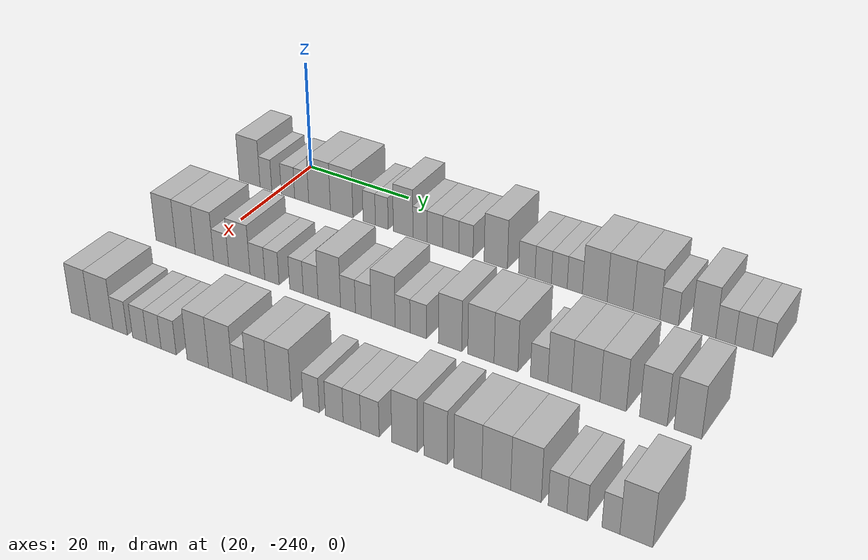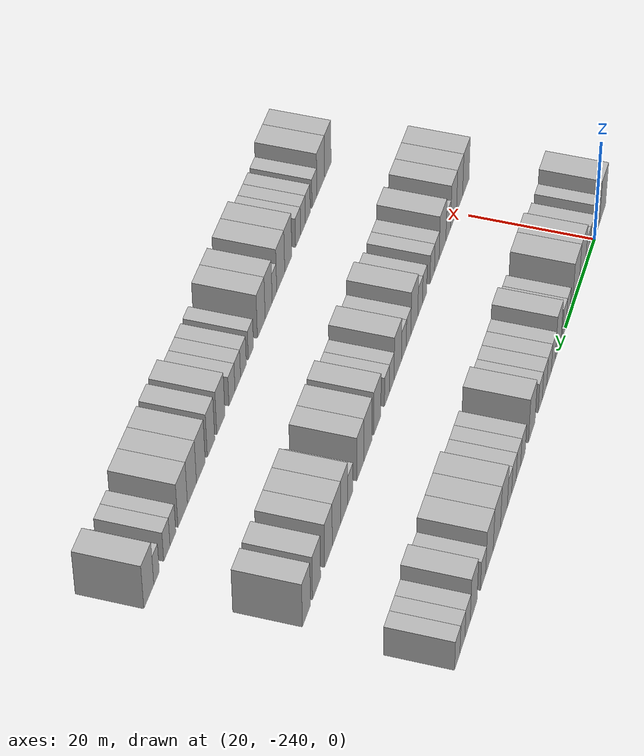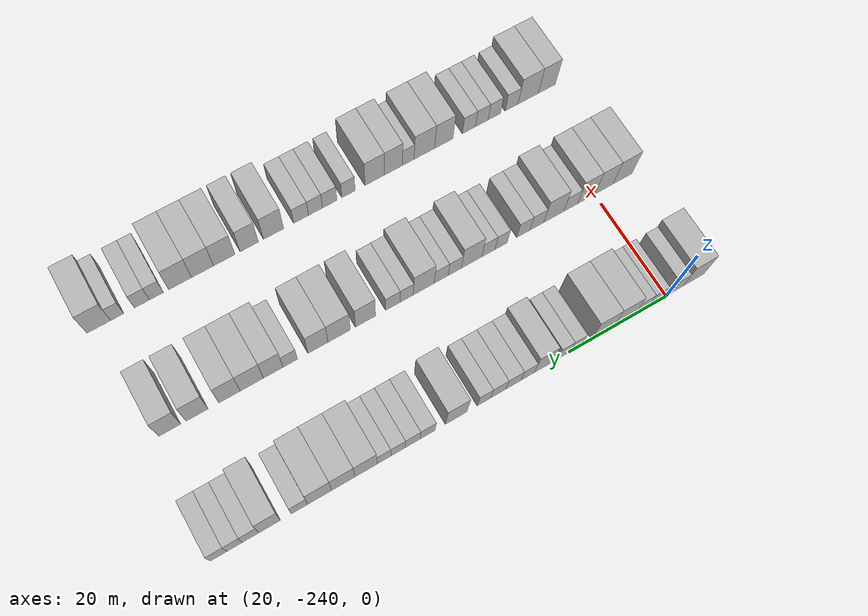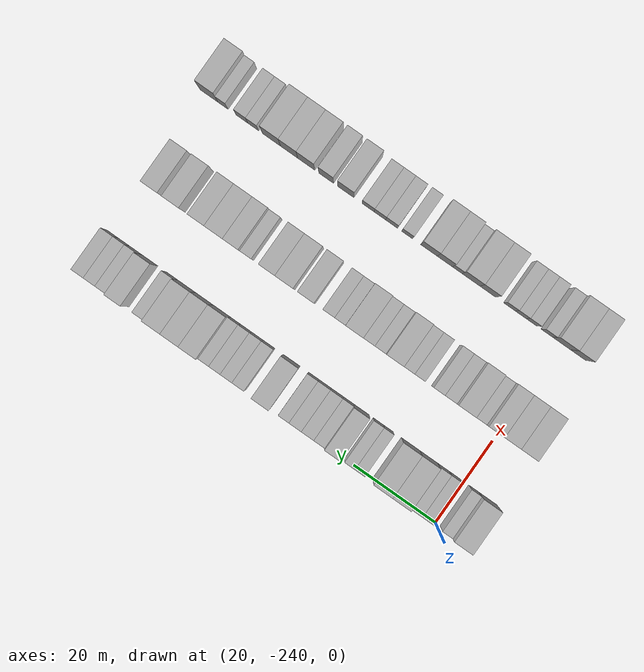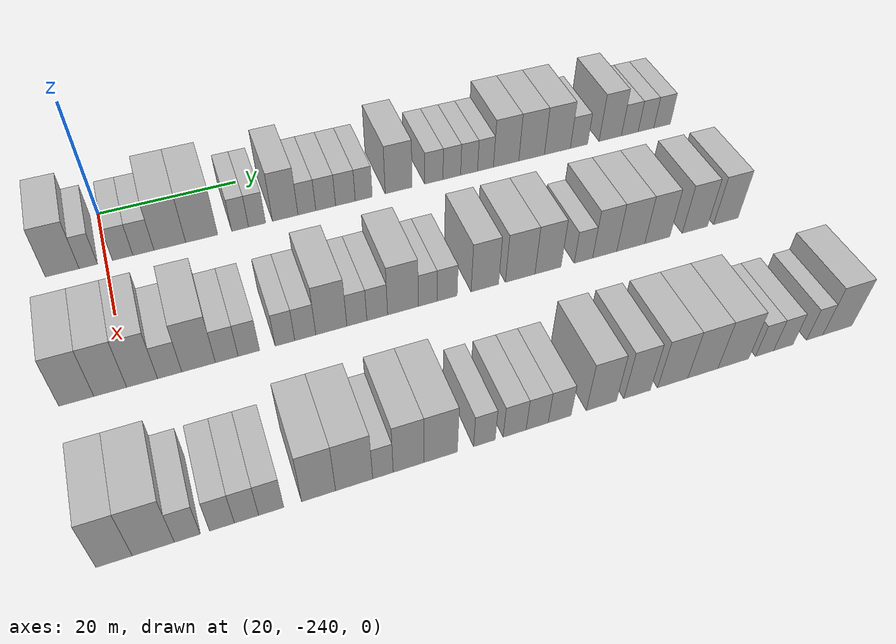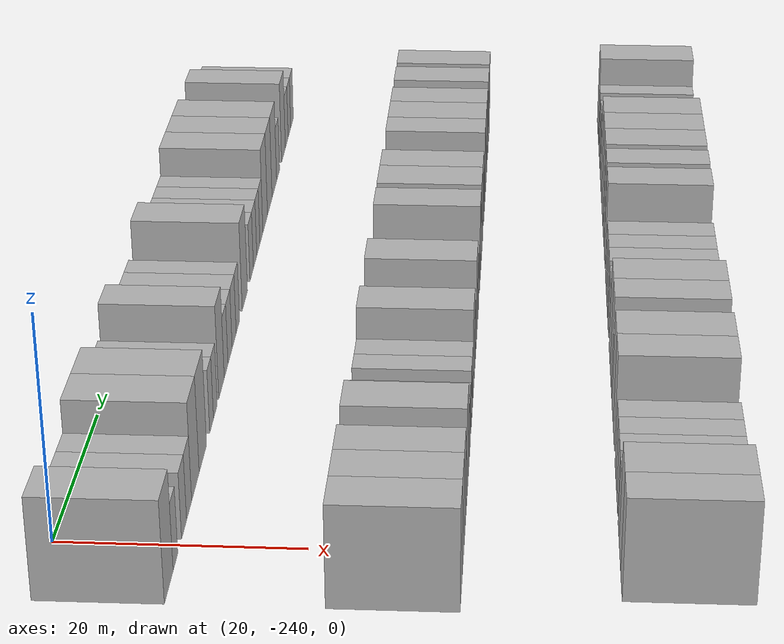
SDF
<sdf version="1.6">
 <world name="default">
  <model name="building_1">
   <static>1</static>
   <pose>25.0000 -245.7820 0 0.000000 0.000000 0.000000</pose>
   <link name="link">
    <pose>0 0 4.50 0 0 0</pose>
    <collision name="collision"><geometry><box><size>10.0000 4.4360 9.0000</size></box></geometry></collision>
    <visual name="visual">
     <cast_shadows>0</cast_shadows>
     <geometry><box><size>10.0000 4.4360 9.0000</size></box></geometry>
     <material>
      <script>
       <uri>model://HANNAS_wall/materials/scripts</uri>
       <uri>model://HANNAS_wall/materials/textures</uri>
       <name>vrc/HANNAS_wall</name>
      </script>
     </material>
    </visual>
   </link>
  </model>
  <model name="building_2">
   <static>1</static>
   <pose>25.0000 -242.3404 0 0.000000 0.000000 0.000000</pose>
   <link name="link">
    <pose>0 0 3.00 0 0 0</pose>
    <collision name="collision"><geometry><box><size>10.0000 2.4471 6.0000</size></box></geometry></collision>
    <visual name="visual">
     <cast_shadows>0</cast_shadows>
     <geometry><box><size>10.0000 2.4471 6.0000</size></box></geometry>
     <material>
      <script>
       <uri>model://HANNAS_wall/materials/scripts</uri>
       <uri>model://HANNAS_wall/materials/textures</uri>
       <name>vrc/HANNAS_wall</name>
      </script>
     </material>
    </visual>
   </link>
  </model>
  <model name="building_3">
   <static>1</static>
   <pose>25.0000 -237.7306 0 0.000000 0.000000 0.000000</pose>
   <link name="link">
    <pose>0 0 3.00 0 0 0</pose>
    <collision name="collision"><geometry><box><size>10.0000 2.7723 6.0000</size></box></geometry></collision>
    <visual name="visual">
     <cast_shadows>0</cast_shadows>
     <geometry><box><size>10.0000 2.7723 6.0000</size></box></geometry>
     <material>
      <script>
       <uri>model://HANNAS_wall/materials/scripts</uri>
       <uri>model://HANNAS_wall/materials/textures</uri>
       <name>vrc/HANNAS_wall</name>
      </script>
     </material>
    </visual>
   </link>
  </model>
  <model name="building_4">
   <static>1</static>
   <pose>25.0000 -234.9092 0 0.000000 0.000000 0.000000</pose>
   <link name="link">
    <pose>0 0 3.00 0 0 0</pose>
    <collision name="collision"><geometry><box><size>10.0000 2.8706 6.0000</size></box></geometry></collision>
    <visual name="visual">
     <cast_shadows>0</cast_shadows>
     <geometry><box><size>10.0000 2.8706 6.0000</size></box></geometry>
     <material>
      <script>
       <uri>model://HANNAS_wall/materials/scripts</uri>
       <uri>model://HANNAS_wall/materials/textures</uri>
       <name>vrc/HANNAS_wall</name>
      </script>
     </material>
    </visual>
   </link>
  </model>
  <model name="building_5">
   <static>1</static>
   <pose>25.0000 -231.2819 0 0.000000 0.000000 0.000000</pose>
   <link name="link">
    <pose>0 0 4.50 0 0 0</pose>
    <collision name="collision"><geometry><box><size>10.0000 4.3839 9.0000</size></box></geometry></collision>
    <visual name="visual">
     <cast_shadows>0</cast_shadows>
     <geometry><box><size>10.0000 4.3839 9.0000</size></box></geometry>
     <material>
      <script>
       <uri>model://HANNAS_wall/materials/scripts</uri>
       <uri>model://HANNAS_wall/materials/textures</uri>
       <name>vrc/HANNAS_wall</name>
      </script>
     </material>
    </visual>
   </link>
  </model>
  <model name="building_6">
   <static>1</static>
   <pose>25.0000 -226.8421 0 0.000000 0.000000 0.000000</pose>
   <link name="link">
    <pose>0 0 4.50 0 0 0</pose>
    <collision name="collision"><geometry><box><size>10.0000 4.4957 9.0000</size></box></geometry></collision>
    <visual name="visual">
     <cast_shadows>0</cast_shadows>
     <geometry><box><size>10.0000 4.4957 9.0000</size></box></geometry>
     <material>
      <script>
       <uri>model://HANNAS_wall/materials/scripts</uri>
       <uri>model://HANNAS_wall/materials/textures</uri>
       <name>vrc/HANNAS_wall</name>
      </script>
     </material>
    </visual>
   </link>
  </model>
  <model name="building_7">
   <static>1</static>
   <pose>25.0000 -221.3880 0 0.000000 0.000000 0.000000</pose>
   <link name="link">
    <pose>0 0 3.00 0 0 0</pose>
    <collision name="collision"><geometry><box><size>10.0000 2.4125 6.0000</size></box></geometry></collision>
    <visual name="visual">
     <cast_shadows>0</cast_shadows>
     <geometry><box><size>10.0000 2.4125 6.0000</size></box></geometry>
     <material>
      <script>
       <uri>model://HANNAS_wall/materials/scripts</uri>
       <uri>model://HANNAS_wall/materials/textures</uri>
       <name>vrc/HANNAS_wall</name>
      </script>
     </material>
    </visual>
   </link>
  </model>
  <model name="building_8">
   <static>1</static>
   <pose>25.0000 -218.9477 0 0.000000 0.000000 0.000000</pose>
   <link name="link">
    <pose>0 0 3.00 0 0 0</pose>
    <collision name="collision"><geometry><box><size>10.0000 2.4682 6.0000</size></box></geometry></collision>
    <visual name="visual">
     <cast_shadows>0</cast_shadows>
     <geometry><box><size>10.0000 2.4682 6.0000</size></box></geometry>
     <material>
      <script>
       <uri>model://HANNAS_wall/materials/scripts</uri>
       <uri>model://HANNAS_wall/materials/textures</uri>
       <name>vrc/HANNAS_wall</name>
      </script>
     </material>
    </visual>
   </link>
  </model>
  <model name="building_9">
   <static>1</static>
   <pose>25.0000 -214.8393 0 0.000000 0.000000 0.000000</pose>
   <link name="link">
    <pose>0 0 4.50 0 0 0</pose>
    <collision name="collision"><geometry><box><size>10.0000 3.7484 9.0000</size></box></geometry></collision>
    <visual name="visual">
     <cast_shadows>0</cast_shadows>
     <geometry><box><size>10.0000 3.7484 9.0000</size></box></geometry>
     <material>
      <script>
       <uri>model://HANNAS_wall/materials/scripts</uri>
       <uri>model://HANNAS_wall/materials/textures</uri>
       <name>vrc/HANNAS_wall</name>
      </script>
     </material>
    </visual>
   </link>
  </model>
  <model name="building_10">
   <static>1</static>
   <pose>25.0000 -211.6460 0 0.000000 0.000000 0.000000</pose>
   <link name="link">
    <pose>0 0 3.00 0 0 0</pose>
    <collision name="collision"><geometry><box><size>10.0000 2.6384 6.0000</size></box></geometry></collision>
    <visual name="visual">
     <cast_shadows>0</cast_shadows>
     <geometry><box><size>10.0000 2.6384 6.0000</size></box></geometry>
     <material>
      <script>
       <uri>model://HANNAS_wall/materials/scripts</uri>
       <uri>model://HANNAS_wall/materials/textures</uri>
       <name>vrc/HANNAS_wall</name>
      </script>
     </material>
    </visual>
   </link>
  </model>
  <model name="building_11">
   <static>1</static>
   <pose>25.0000 -208.8383 0 0.000000 0.000000 0.000000</pose>
   <link name="link">
    <pose>0 0 3.00 0 0 0</pose>
    <collision name="collision"><geometry><box><size>10.0000 2.9770 6.0000</size></box></geometry></collision>
    <visual name="visual">
     <cast_shadows>0</cast_shadows>
     <geometry><box><size>10.0000 2.9770 6.0000</size></box></geometry>
     <material>
      <script>
       <uri>model://HANNAS_wall/materials/scripts</uri>
       <uri>model://HANNAS_wall/materials/textures</uri>
       <name>vrc/HANNAS_wall</name>
      </script>
     </material>
    </visual>
   </link>
  </model>
  <model name="building_12">
   <static>1</static>
   <pose>25.0000 -205.8643 0 0.000000 0.000000 0.000000</pose>
   <link name="link">
    <pose>0 0 3.00 0 0 0</pose>
    <collision name="collision"><geometry><box><size>10.0000 2.9710 6.0000</size></box></geometry></collision>
    <visual name="visual">
     <cast_shadows>0</cast_shadows>
     <geometry><box><size>10.0000 2.9710 6.0000</size></box></geometry>
     <material>
      <script>
       <uri>model://HANNAS_wall/materials/scripts</uri>
       <uri>model://HANNAS_wall/materials/textures</uri>
       <name>vrc/HANNAS_wall</name>
      </script>
     </material>
    </visual>
   </link>
  </model>
  <model name="building_13">
   <static>1</static>
   <pose>25.0000 -203.0817 0 0.000000 0.000000 0.000000</pose>
   <link name="link">
    <pose>0 0 3.00 0 0 0</pose>
    <collision name="collision"><geometry><box><size>10.0000 2.5942 6.0000</size></box></geometry></collision>
    <visual name="visual">
     <cast_shadows>0</cast_shadows>
     <geometry><box><size>10.0000 2.5942 6.0000</size></box></geometry>
     <material>
      <script>
       <uri>model://HANNAS_wall/materials/scripts</uri>
       <uri>model://HANNAS_wall/materials/textures</uri>
       <name>vrc/HANNAS_wall</name>
      </script>
     </material>
    </visual>
   </link>
  </model>
  <model name="building_14">
   <static>1</static>
   <pose>25.0000 -197.6936 0 0.000000 0.000000 0.000000</pose>
   <link name="link">
    <pose>0 0 4.50 0 0 0</pose>
    <collision name="collision"><geometry><box><size>10.0000 4.1819 9.0000</size></box></geometry></collision>
    <visual name="visual">
     <cast_shadows>0</cast_shadows>
     <geometry><box><size>10.0000 4.1819 9.0000</size></box></geometry>
     <material>
      <script>
       <uri>model://HANNAS_wall/materials/scripts</uri>
       <uri>model://HANNAS_wall/materials/textures</uri>
       <name>vrc/HANNAS_wall</name>
      </script>
     </material>
    </visual>
   </link>
  </model>
  <model name="building_15">
   <static>1</static>
   <pose>25.0000 -192.1597 0 0.000000 0.000000 0.000000</pose>
   <link name="link">
    <pose>0 0 3.00 0 0 0</pose>
    <collision name="collision"><geometry><box><size>10.0000 2.8860 6.0000</size></box></geometry></collision>
    <visual name="visual">
     <cast_shadows>0</cast_shadows>
     <geometry><box><size>10.0000 2.8860 6.0000</size></box></geometry>
     <material>
      <script>
       <uri>model://HANNAS_wall/materials/scripts</uri>
       <uri>model://HANNAS_wall/materials/textures</uri>
       <name>vrc/HANNAS_wall</name>
      </script>
     </material>
    </visual>
   </link>
  </model>
  <model name="building_16">
   <static>1</static>
   <pose>25.0000 -189.2978 0 0.000000 0.000000 0.000000</pose>
   <link name="link">
    <pose>0 0 3.00 0 0 0</pose>
    <collision name="collision"><geometry><box><size>10.0000 2.8378 6.0000</size></box></geometry></collision>
    <visual name="visual">
     <cast_shadows>0</cast_shadows>
     <geometry><box><size>10.0000 2.8378 6.0000</size></box></geometry>
     <material>
      <script>
       <uri>model://HANNAS_wall/materials/scripts</uri>
       <uri>model://HANNAS_wall/materials/textures</uri>
       <name>vrc/HANNAS_wall</name>
      </script>
     </material>
    </visual>
   </link>
  </model>
  <model name="building_17">
   <static>1</static>
   <pose>25.0000 -186.5145 0 0.000000 0.000000 0.000000</pose>
   <link name="link">
    <pose>0 0 3.00 0 0 0</pose>
    <collision name="collision"><geometry><box><size>10.0000 2.7287 6.0000</size></box></geometry></collision>
    <visual name="visual">
     <cast_shadows>0</cast_shadows>
     <geometry><box><size>10.0000 2.7287 6.0000</size></box></geometry>
     <material>
      <script>
       <uri>model://HANNAS_wall/materials/scripts</uri>
       <uri>model://HANNAS_wall/materials/textures</uri>
       <name>vrc/HANNAS_wall</name>
      </script>
     </material>
    </visual>
   </link>
  </model>
  <model name="building_18">
   <static>1</static>
   <pose>25.0000 -183.8491 0 0.000000 0.000000 0.000000</pose>
   <link name="link">
    <pose>0 0 3.00 0 0 0</pose>
    <collision name="collision"><geometry><box><size>10.0000 2.6021 6.0000</size></box></geometry></collision>
    <visual name="visual">
     <cast_shadows>0</cast_shadows>
     <geometry><box><size>10.0000 2.6021 6.0000</size></box></geometry>
     <material>
      <script>
       <uri>model://HANNAS_wall/materials/scripts</uri>
       <uri>model://HANNAS_wall/materials/textures</uri>
       <name>vrc/HANNAS_wall</name>
      </script>
     </material>
    </visual>
   </link>
  </model>
  <model name="building_19">
   <static>1</static>
   <pose>25.0000 -180.4580 0 0.000000 0.000000 0.000000</pose>
   <link name="link">
    <pose>0 0 4.50 0 0 0</pose>
    <collision name="collision"><geometry><box><size>10.0000 4.1801 9.0000</size></box></geometry></collision>
    <visual name="visual">
     <cast_shadows>0</cast_shadows>
     <geometry><box><size>10.0000 4.1801 9.0000</size></box></geometry>
     <material>
      <script>
       <uri>model://HANNAS_wall/materials/scripts</uri>
       <uri>model://HANNAS_wall/materials/textures</uri>
       <name>vrc/HANNAS_wall</name>
      </script>
     </material>
    </visual>
   </link>
  </model>
  <model name="building_20">
   <static>1</static>
   <pose>25.0000 -176.2188 0 0.000000 0.000000 0.000000</pose>
   <link name="link">
    <pose>0 0 4.50 0 0 0</pose>
    <collision name="collision"><geometry><box><size>10.0000 4.2982 9.0000</size></box></geometry></collision>
    <visual name="visual">
     <cast_shadows>0</cast_shadows>
     <geometry><box><size>10.0000 4.2982 9.0000</size></box></geometry>
     <material>
      <script>
       <uri>model://HANNAS_wall/materials/scripts</uri>
       <uri>model://HANNAS_wall/materials/textures</uri>
       <name>vrc/HANNAS_wall</name>
      </script>
     </material>
    </visual>
   </link>
  </model>
  <model name="building_21">
   <static>1</static>
   <pose>25.0000 -171.8665 0 0.000000 0.000000 0.000000</pose>
   <link name="link">
    <pose>0 0 4.50 0 0 0</pose>
    <collision name="collision"><geometry><box><size>10.0000 4.4064 9.0000</size></box></geometry></collision>
    <visual name="visual">
     <cast_shadows>0</cast_shadows>
     <geometry><box><size>10.0000 4.4064 9.0000</size></box></geometry>
     <material>
      <script>
       <uri>model://HANNAS_wall/materials/scripts</uri>
       <uri>model://HANNAS_wall/materials/textures</uri>
       <name>vrc/HANNAS_wall</name>
      </script>
     </material>
    </visual>
   </link>
  </model>
  <model name="building_22">
   <static>1</static>
   <pose>25.0000 -168.1810 0 0.000000 0.000000 0.000000</pose>
   <link name="link">
    <pose>0 0 3.00 0 0 0</pose>
    <collision name="collision"><geometry><box><size>10.0000 2.9647 6.0000</size></box></geometry></collision>
    <visual name="visual">
     <cast_shadows>0</cast_shadows>
     <geometry><box><size>10.0000 2.9647 6.0000</size></box></geometry>
     <material>
      <script>
       <uri>model://HANNAS_wall/materials/scripts</uri>
       <uri>model://HANNAS_wall/materials/textures</uri>
       <name>vrc/HANNAS_wall</name>
      </script>
     </material>
    </visual>
   </link>
  </model>
  <model name="building_23">
   <static>1</static>
   <pose>25.0000 -162.7484 0 0.000000 0.000000 0.000000</pose>
   <link name="link">
    <pose>0 0 4.50 0 0 0</pose>
    <collision name="collision"><geometry><box><size>10.0000 3.9005 9.0000</size></box></geometry></collision>
    <visual name="visual">
     <cast_shadows>0</cast_shadows>
     <geometry><box><size>10.0000 3.9005 9.0000</size></box></geometry>
     <material>
      <script>
       <uri>model://HANNAS_wall/materials/scripts</uri>
       <uri>model://HANNAS_wall/materials/textures</uri>
       <name>vrc/HANNAS_wall</name>
      </script>
     </material>
    </visual>
   </link>
  </model>
  <model name="building_24">
   <static>1</static>
   <pose>25.0000 -159.3127 0 0.000000 0.000000 0.000000</pose>
   <link name="link">
    <pose>0 0 3.00 0 0 0</pose>
    <collision name="collision"><geometry><box><size>10.0000 2.9710 6.0000</size></box></geometry></collision>
    <visual name="visual">
     <cast_shadows>0</cast_shadows>
     <geometry><box><size>10.0000 2.9710 6.0000</size></box></geometry>
     <material>
      <script>
       <uri>model://HANNAS_wall/materials/scripts</uri>
       <uri>model://HANNAS_wall/materials/textures</uri>
       <name>vrc/HANNAS_wall</name>
      </script>
     </material>
    </visual>
   </link>
  </model>
  <model name="building_25">
   <static>1</static>
   <pose>25.0000 -156.4310 0 0.000000 0.000000 0.000000</pose>
   <link name="link">
    <pose>0 0 3.00 0 0 0</pose>
    <collision name="collision"><geometry><box><size>10.0000 2.7923 6.0000</size></box></geometry></collision>
    <visual name="visual">
     <cast_shadows>0</cast_shadows>
     <geometry><box><size>10.0000 2.7923 6.0000</size></box></geometry>
     <material>
      <script>
       <uri>model://HANNAS_wall/materials/scripts</uri>
       <uri>model://HANNAS_wall/materials/textures</uri>
       <name>vrc/HANNAS_wall</name>
      </script>
     </material>
    </visual>
   </link>
  </model>
  <model name="building_26">
   <static>1</static>
   <pose>25.0000 -153.5537 0 0.000000 0.000000 0.000000</pose>
   <link name="link">
    <pose>0 0 3.00 0 0 0</pose>
    <collision name="collision"><geometry><box><size>10.0000 2.9624 6.0000</size></box></geometry></collision>
    <visual name="visual">
     <cast_shadows>0</cast_shadows>
     <geometry><box><size>10.0000 2.9624 6.0000</size></box></geometry>
     <material>
      <script>
       <uri>model://HANNAS_wall/materials/scripts</uri>
       <uri>model://HANNAS_wall/materials/textures</uri>
       <name>vrc/HANNAS_wall</name>
      </script>
     </material>
    </visual>
   </link>
  </model>
  <model name="building_121">
   <static>1</static>
   <pose>47.0000 -245.9541 0 0.000000 0.000000 0.000000</pose>
   <link name="link">
    <pose>0 0 4.50 0 0 0</pose>
    <collision name="collision"><geometry><box><size>10.0000 4.0917 9.0000</size></box></geometry></collision>
    <visual name="visual">
     <cast_shadows>0</cast_shadows>
     <geometry><box><size>10.0000 4.0917 9.0000</size></box></geometry>
     <material>
      <script>
       <uri>model://HANNAS_wall/materials/scripts</uri>
       <uri>model://HANNAS_wall/materials/textures</uri>
       <name>vrc/HANNAS_wall</name>
      </script>
     </material>
    </visual>
   </link>
  </model>
  <model name="building_122">
   <static>1</static>
   <pose>47.0000 -241.9619 0 0.000000 0.000000 0.000000</pose>
   <link name="link">
    <pose>0 0 4.50 0 0 0</pose>
    <collision name="collision"><geometry><box><size>10.0000 3.8928 9.0000</size></box></geometry></collision>
    <visual name="visual">
     <cast_shadows>0</cast_shadows>
     <geometry><box><size>10.0000 3.8928 9.0000</size></box></geometry>
     <material>
      <script>
       <uri>model://HANNAS_wall/materials/scripts</uri>
       <uri>model://HANNAS_wall/materials/textures</uri>
       <name>vrc/HANNAS_wall</name>
      </script>
     </material>
    </visual>
   </link>
  </model>
  <model name="building_123">
   <static>1</static>
   <pose>47.0000 -238.1537 0 0.000000 0.000000 0.000000</pose>
   <link name="link">
    <pose>0 0 4.50 0 0 0</pose>
    <collision name="collision"><geometry><box><size>10.0000 3.7235 9.0000</size></box></geometry></collision>
    <visual name="visual">
     <cast_shadows>0</cast_shadows>
     <geometry><box><size>10.0000 3.7235 9.0000</size></box></geometry>
     <material>
      <script>
       <uri>model://HANNAS_wall/materials/scripts</uri>
       <uri>model://HANNAS_wall/materials/textures</uri>
       <name>vrc/HANNAS_wall</name>
      </script>
     </material>
    </visual>
   </link>
  </model>
  <model name="building_124">
   <static>1</static>
   <pose>47.0000 -234.8184 0 0.000000 0.000000 0.000000</pose>
   <link name="link">
    <pose>0 0 3.00 0 0 0</pose>
    <collision name="collision"><geometry><box><size>10.0000 2.9470 6.0000</size></box></geometry></collision>
    <visual name="visual">
     <cast_shadows>0</cast_shadows>
     <geometry><box><size>10.0000 2.9470 6.0000</size></box></geometry>
     <material>
      <script>
       <uri>model://HANNAS_wall/materials/scripts</uri>
       <uri>model://HANNAS_wall/materials/textures</uri>
       <name>vrc/HANNAS_wall</name>
      </script>
     </material>
    </visual>
   </link>
  </model>
  <model name="building_125">
   <static>1</static>
   <pose>47.0000 -231.2558 0 0.000000 0.000000 0.000000</pose>
   <link name="link">
    <pose>0 0 4.50 0 0 0</pose>
    <collision name="collision"><geometry><box><size>10.0000 4.1781 9.0000</size></box></geometry></collision>
    <visual name="visual">
     <cast_shadows>0</cast_shadows>
     <geometry><box><size>10.0000 4.1781 9.0000</size></box></geometry>
     <material>
      <script>
       <uri>model://HANNAS_wall/materials/scripts</uri>
       <uri>model://HANNAS_wall/materials/textures</uri>
       <name>vrc/HANNAS_wall</name>
      </script>
     </material>
    </visual>
   </link>
  </model>
  <model name="building_126">
   <static>1</static>
   <pose>47.0000 -227.7360 0 0.000000 0.000000 0.000000</pose>
   <link name="link">
    <pose>0 0 3.00 0 0 0</pose>
    <collision name="collision"><geometry><box><size>10.0000 2.8616 6.0000</size></box></geometry></collision>
    <visual name="visual">
     <cast_shadows>0</cast_shadows>
     <geometry><box><size>10.0000 2.8616 6.0000</size></box></geometry>
     <material>
      <script>
       <uri>model://HANNAS_wall/materials/scripts</uri>
       <uri>model://HANNAS_wall/materials/textures</uri>
       <name>vrc/HANNAS_wall</name>
      </script>
     </material>
    </visual>
   </link>
  </model>
  <model name="building_127">
   <static>1</static>
   <pose>47.0000 -224.9467 0 0.000000 0.000000 0.000000</pose>
   <link name="link">
    <pose>0 0 3.00 0 0 0</pose>
    <collision name="collision"><geometry><box><size>10.0000 2.7168 6.0000</size></box></geometry></collision>
    <visual name="visual">
     <cast_shadows>0</cast_shadows>
     <geometry><box><size>10.0000 2.7168 6.0000</size></box></geometry>
     <material>
      <script>
       <uri>model://HANNAS_wall/materials/scripts</uri>
       <uri>model://HANNAS_wall/materials/textures</uri>
       <name>vrc/HANNAS_wall</name>
      </script>
     </material>
    </visual>
   </link>
  </model>
  <model name="building_128">
   <static>1</static>
   <pose>47.0000 -220.3183 0 0.000000 0.000000 0.000000</pose>
   <link name="link">
    <pose>0 0 3.00 0 0 0</pose>
    <collision name="collision"><geometry><box><size>10.0000 2.5400 6.0000</size></box></geometry></collision>
    <visual name="visual">
     <cast_shadows>0</cast_shadows>
     <geometry><box><size>10.0000 2.5400 6.0000</size></box></geometry>
     <material>
      <script>
       <uri>model://HANNAS_wall/materials/scripts</uri>
       <uri>model://HANNAS_wall/materials/textures</uri>
       <name>vrc/HANNAS_wall</name>
      </script>
     </material>
    </visual>
   </link>
  </model>
  <model name="building_129">
   <static>1</static>
   <pose>47.0000 -217.6712 0 0.000000 0.000000 0.000000</pose>
   <link name="link">
    <pose>0 0 3.00 0 0 0</pose>
    <collision name="collision"><geometry><box><size>10.0000 2.7543 6.0000</size></box></geometry></collision>
    <visual name="visual">
     <cast_shadows>0</cast_shadows>
     <geometry><box><size>10.0000 2.7543 6.0000</size></box></geometry>
     <material>
      <script>
       <uri>model://HANNAS_wall/materials/scripts</uri>
       <uri>model://HANNAS_wall/materials/textures</uri>
       <name>vrc/HANNAS_wall</name>
      </script>
     </material>
    </visual>
   </link>
  </model>
  <model name="building_130">
   <static>1</static>
   <pose>47.0000 -214.2307 0 0.000000 0.000000 0.000000</pose>
   <link name="link">
    <pose>0 0 4.50 0 0 0</pose>
    <collision name="collision"><geometry><box><size>10.0000 4.1267 9.0000</size></box></geometry></collision>
    <visual name="visual">
     <cast_shadows>0</cast_shadows>
     <geometry><box><size>10.0000 4.1267 9.0000</size></box></geometry>
     <material>
      <script>
       <uri>model://HANNAS_wall/materials/scripts</uri>
       <uri>model://HANNAS_wall/materials/textures</uri>
       <name>vrc/HANNAS_wall</name>
      </script>
     </material>
    </visual>
   </link>
  </model>
  <model name="building_131">
   <static>1</static>
   <pose>47.0000 -210.8253 0 0.000000 0.000000 0.000000</pose>
   <link name="link">
    <pose>0 0 3.00 0 0 0</pose>
    <collision name="collision"><geometry><box><size>10.0000 2.6841 6.0000</size></box></geometry></collision>
    <visual name="visual">
     <cast_shadows>0</cast_shadows>
     <geometry><box><size>10.0000 2.6841 6.0000</size></box></geometry>
     <material>
      <script>
       <uri>model://HANNAS_wall/materials/scripts</uri>
       <uri>model://HANNAS_wall/materials/textures</uri>
       <name>vrc/HANNAS_wall</name>
      </script>
     </material>
    </visual>
   </link>
  </model>
  <model name="building_132">
   <static>1</static>
   <pose>47.0000 -208.0758 0 0.000000 0.000000 0.000000</pose>
   <link name="link">
    <pose>0 0 3.00 0 0 0</pose>
    <collision name="collision"><geometry><box><size>10.0000 2.8147 6.0000</size></box></geometry></collision>
    <visual name="visual">
     <cast_shadows>0</cast_shadows>
     <geometry><box><size>10.0000 2.8147 6.0000</size></box></geometry>
     <material>
      <script>
       <uri>model://HANNAS_wall/materials/scripts</uri>
       <uri>model://HANNAS_wall/materials/textures</uri>
       <name>vrc/HANNAS_wall</name>
      </script>
     </material>
    </visual>
   </link>
  </model>
  <model name="building_133">
   <static>1</static>
   <pose>47.0000 -204.5587 0 0.000000 0.000000 0.000000</pose>
   <link name="link">
    <pose>0 0 4.50 0 0 0</pose>
    <collision name="collision"><geometry><box><size>10.0000 4.2195 9.0000</size></box></geometry></collision>
    <visual name="visual">
     <cast_shadows>0</cast_shadows>
     <geometry><box><size>10.0000 4.2195 9.0000</size></box></geometry>
     <material>
      <script>
       <uri>model://HANNAS_wall/materials/scripts</uri>
       <uri>model://HANNAS_wall/materials/textures</uri>
       <name>vrc/HANNAS_wall</name>
      </script>
     </material>
    </visual>
   </link>
  </model>
  <model name="building_134">
   <static>1</static>
   <pose>47.0000 -201.1417 0 0.000000 0.000000 0.000000</pose>
   <link name="link">
    <pose>0 0 3.00 0 0 0</pose>
    <collision name="collision"><geometry><box><size>10.0000 2.6144 6.0000</size></box></geometry></collision>
    <visual name="visual">
     <cast_shadows>0</cast_shadows>
     <geometry><box><size>10.0000 2.6144 6.0000</size></box></geometry>
     <material>
      <script>
       <uri>model://HANNAS_wall/materials/scripts</uri>
       <uri>model://HANNAS_wall/materials/textures</uri>
       <name>vrc/HANNAS_wall</name>
      </script>
     </material>
    </visual>
   </link>
  </model>
  <model name="building_135">
   <static>1</static>
   <pose>47.0000 -198.4143 0 0.000000 0.000000 0.000000</pose>
   <link name="link">
    <pose>0 0 3.00 0 0 0</pose>
    <collision name="collision"><geometry><box><size>10.0000 2.8405 6.0000</size></box></geometry></collision>
    <visual name="visual">
     <cast_shadows>0</cast_shadows>
     <geometry><box><size>10.0000 2.8405 6.0000</size></box></geometry>
     <material>
      <script>
       <uri>model://HANNAS_wall/materials/scripts</uri>
       <uri>model://HANNAS_wall/materials/textures</uri>
       <name>vrc/HANNAS_wall</name>
      </script>
     </material>
    </visual>
   </link>
  </model>
  <model name="building_136">
   <static>1</static>
   <pose>47.0000 -193.0168 0 0.000000 0.000000 0.000000</pose>
   <link name="link">
    <pose>0 0 4.50 0 0 0</pose>
    <collision name="collision"><geometry><box><size>10.0000 3.9546 9.0000</size></box></geometry></collision>
    <visual name="visual">
     <cast_shadows>0</cast_shadows>
     <geometry><box><size>10.0000 3.9546 9.0000</size></box></geometry>
     <material>
      <script>
       <uri>model://HANNAS_wall/materials/scripts</uri>
       <uri>model://HANNAS_wall/materials/textures</uri>
       <name>vrc/HANNAS_wall</name>
      </script>
     </material>
    </visual>
   </link>
  </model>
  <model name="building_137">
   <static>1</static>
   <pose>47.0000 -187.8717 0 0.000000 0.000000 0.000000</pose>
   <link name="link">
    <pose>0 0 4.50 0 0 0</pose>
    <collision name="collision"><geometry><box><size>10.0000 4.3355 9.0000</size></box></geometry></collision>
    <visual name="visual">
     <cast_shadows>0</cast_shadows>
     <geometry><box><size>10.0000 4.3355 9.0000</size></box></geometry>
     <material>
      <script>
       <uri>model://HANNAS_wall/materials/scripts</uri>
       <uri>model://HANNAS_wall/materials/textures</uri>
       <name>vrc/HANNAS_wall</name>
      </script>
     </material>
    </visual>
   </link>
  </model>
  <model name="building_138">
   <static>1</static>
   <pose>47.0000 -183.7609 0 0.000000 0.000000 0.000000</pose>
   <link name="link">
    <pose>0 0 4.50 0 0 0</pose>
    <collision name="collision"><geometry><box><size>10.0000 3.8861 9.0000</size></box></geometry></collision>
    <visual name="visual">
     <cast_shadows>0</cast_shadows>
     <geometry><box><size>10.0000 3.8861 9.0000</size></box></geometry>
     <material>
      <script>
       <uri>model://HANNAS_wall/materials/scripts</uri>
       <uri>model://HANNAS_wall/materials/textures</uri>
       <name>vrc/HANNAS_wall</name>
      </script>
     </material>
    </visual>
   </link>
  </model>
  <model name="building_139">
   <static>1</static>
   <pose>47.0000 -178.4228 0 0.000000 0.000000 0.000000</pose>
   <link name="link">
    <pose>0 0 3.00 0 0 0</pose>
    <collision name="collision"><geometry><box><size>10.0000 2.7902 6.0000</size></box></geometry></collision>
    <visual name="visual">
     <cast_shadows>0</cast_shadows>
     <geometry><box><size>10.0000 2.7902 6.0000</size></box></geometry>
     <material>
      <script>
       <uri>model://HANNAS_wall/materials/scripts</uri>
       <uri>model://HANNAS_wall/materials/textures</uri>
       <name>vrc/HANNAS_wall</name>
      </script>
     </material>
    </visual>
   </link>
  </model>
  <model name="building_140">
   <static>1</static>
   <pose>47.0000 -175.1665 0 0.000000 0.000000 0.000000</pose>
   <link name="link">
    <pose>0 0 4.50 0 0 0</pose>
    <collision name="collision"><geometry><box><size>10.0000 3.7224 9.0000</size></box></geometry></collision>
    <visual name="visual">
     <cast_shadows>0</cast_shadows>
     <geometry><box><size>10.0000 3.7224 9.0000</size></box></geometry>
     <material>
      <script>
       <uri>model://HANNAS_wall/materials/scripts</uri>
       <uri>model://HANNAS_wall/materials/textures</uri>
       <name>vrc/HANNAS_wall</name>
      </script>
     </material>
    </visual>
   </link>
  </model>
  <model name="building_141">
   <static>1</static>
   <pose>47.0000 -171.1185 0 0.000000 0.000000 0.000000</pose>
   <link name="link">
    <pose>0 0 4.50 0 0 0</pose>
    <collision name="collision"><geometry><box><size>10.0000 4.3735 9.0000</size></box></geometry></collision>
    <visual name="visual">
     <cast_shadows>0</cast_shadows>
     <geometry><box><size>10.0000 4.3735 9.0000</size></box></geometry>
     <material>
      <script>
       <uri>model://HANNAS_wall/materials/scripts</uri>
       <uri>model://HANNAS_wall/materials/textures</uri>
       <name>vrc/HANNAS_wall</name>
      </script>
     </material>
    </visual>
   </link>
  </model>
  <model name="building_142">
   <static>1</static>
   <pose>47.0000 -166.9362 0 0.000000 0.000000 0.000000</pose>
   <link name="link">
    <pose>0 0 4.50 0 0 0</pose>
    <collision name="collision"><geometry><box><size>10.0000 3.9912 9.0000</size></box></geometry></collision>
    <visual name="visual">
     <cast_shadows>0</cast_shadows>
     <geometry><box><size>10.0000 3.9912 9.0000</size></box></geometry>
     <material>
      <script>
       <uri>model://HANNAS_wall/materials/scripts</uri>
       <uri>model://HANNAS_wall/materials/textures</uri>
       <name>vrc/HANNAS_wall</name>
      </script>
     </material>
    </visual>
   </link>
  </model>
  <model name="building_143">
   <static>1</static>
   <pose>47.0000 -160.8975 0 0.000000 0.000000 0.000000</pose>
   <link name="link">
    <pose>0 0 4.50 0 0 0</pose>
    <collision name="collision"><geometry><box><size>10.0000 4.0862 9.0000</size></box></geometry></collision>
    <visual name="visual">
     <cast_shadows>0</cast_shadows>
     <geometry><box><size>10.0000 4.0862 9.0000</size></box></geometry>
     <material>
      <script>
       <uri>model://HANNAS_wall/materials/scripts</uri>
       <uri>model://HANNAS_wall/materials/textures</uri>
       <name>vrc/HANNAS_wall</name>
      </script>
     </material>
    </visual>
   </link>
  </model>
  <model name="building_144">
   <static>1</static>
   <pose>47.0000 -155.8414 0 0.000000 0.000000 0.000000</pose>
   <link name="link">
    <pose>0 0 4.50 0 0 0</pose>
    <collision name="collision"><geometry><box><size>10.0000 4.0261 9.0000</size></box></geometry></collision>
    <visual name="visual">
     <cast_shadows>0</cast_shadows>
     <geometry><box><size>10.0000 4.0261 9.0000</size></box></geometry>
     <material>
      <script>
       <uri>model://HANNAS_wall/materials/scripts</uri>
       <uri>model://HANNAS_wall/materials/textures</uri>
       <name>vrc/HANNAS_wall</name>
      </script>
     </material>
    </visual>
   </link>
  </model>
  <model name="building_248">
   <static>1</static>
   <pose>69.0000 -244.1239 0 0.000000 0.000000 0.000000</pose>
   <link name="link">
    <pose>0 0 4.50 0 0 0</pose>
    <collision name="collision"><geometry><box><size>10.0000 3.7522 9.0000</size></box></geometry></collision>
    <visual name="visual">
     <cast_shadows>0</cast_shadows>
     <geometry><box><size>10.0000 3.7522 9.0000</size></box></geometry>
     <material>
      <script>
       <uri>model://HANNAS_wall/materials/scripts</uri>
       <uri>model://HANNAS_wall/materials/textures</uri>
       <name>vrc/HANNAS_wall</name>
      </script>
     </material>
    </visual>
   </link>
  </model>
  <model name="building_249">
   <static>1</static>
   <pose>69.0000 -240.0393 0 0.000000 0.000000 0.000000</pose>
   <link name="link">
    <pose>0 0 4.50 0 0 0</pose>
    <collision name="collision"><geometry><box><size>10.0000 4.4171 9.0000</size></box></geometry></collision>
    <visual name="visual">
     <cast_shadows>0</cast_shadows>
     <geometry><box><size>10.0000 4.4171 9.0000</size></box></geometry>
     <material>
      <script>
       <uri>model://HANNAS_wall/materials/scripts</uri>
       <uri>model://HANNAS_wall/materials/textures</uri>
       <name>vrc/HANNAS_wall</name>
      </script>
     </material>
    </visual>
   </link>
  </model>
  <model name="building_250">
   <static>1</static>
   <pose>69.0000 -236.4465 0 0.000000 0.000000 0.000000</pose>
   <link name="link">
    <pose>0 0 3.00 0 0 0</pose>
    <collision name="collision"><geometry><box><size>10.0000 2.7685 6.0000</size></box></geometry></collision>
    <visual name="visual">
     <cast_shadows>0</cast_shadows>
     <geometry><box><size>10.0000 2.7685 6.0000</size></box></geometry>
     <material>
      <script>
       <uri>model://HANNAS_wall/materials/scripts</uri>
       <uri>model://HANNAS_wall/materials/textures</uri>
       <name>vrc/HANNAS_wall</name>
      </script>
     </material>
    </visual>
   </link>
  </model>
  <model name="building_251">
   <static>1</static>
   <pose>69.0000 -232.7086 0 0.000000 0.000000 0.000000</pose>
   <link name="link">
    <pose>0 0 3.00 0 0 0</pose>
    <collision name="collision"><geometry><box><size>10.0000 2.7072 6.0000</size></box></geometry></collision>
    <visual name="visual">
     <cast_shadows>0</cast_shadows>
     <geometry><box><size>10.0000 2.7072 6.0000</size></box></geometry>
     <material>
      <script>
       <uri>model://HANNAS_wall/materials/scripts</uri>
       <uri>model://HANNAS_wall/materials/textures</uri>
       <name>vrc/HANNAS_wall</name>
      </script>
     </material>
    </visual>
   </link>
  </model>
  <model name="building_252">
   <static>1</static>
   <pose>69.0000 -230.0214 0 0.000000 0.000000 0.000000</pose>
   <link name="link">
    <pose>0 0 3.00 0 0 0</pose>
    <collision name="collision"><geometry><box><size>10.0000 2.6674 6.0000</size></box></geometry></collision>
    <visual name="visual">
     <cast_shadows>0</cast_shadows>
     <geometry><box><size>10.0000 2.6674 6.0000</size></box></geometry>
     <material>
      <script>
       <uri>model://HANNAS_wall/materials/scripts</uri>
       <uri>model://HANNAS_wall/materials/textures</uri>
       <name>vrc/HANNAS_wall</name>
      </script>
     </material>
    </visual>
   </link>
  </model>
  <model name="building_253">
   <static>1</static>
   <pose>69.0000 -227.2897 0 0.000000 0.000000 0.000000</pose>
   <link name="link">
    <pose>0 0 3.00 0 0 0</pose>
    <collision name="collision"><geometry><box><size>10.0000 2.7960 6.0000</size></box></geometry></collision>
    <visual name="visual">
     <cast_shadows>0</cast_shadows>
     <geometry><box><size>10.0000 2.7960 6.0000</size></box></geometry>
     <material>
      <script>
       <uri>model://HANNAS_wall/materials/scripts</uri>
       <uri>model://HANNAS_wall/materials/textures</uri>
       <name>vrc/HANNAS_wall</name>
      </script>
     </material>
    </visual>
   </link>
  </model>
  <model name="building_254">
   <static>1</static>
   <pose>69.0000 -221.9435 0 0.000000 0.000000 0.000000</pose>
   <link name="link">
    <pose>0 0 4.50 0 0 0</pose>
    <collision name="collision"><geometry><box><size>10.0000 3.8965 9.0000</size></box></geometry></collision>
    <visual name="visual">
     <cast_shadows>0</cast_shadows>
     <geometry><box><size>10.0000 3.8965 9.0000</size></box></geometry>
     <material>
      <script>
       <uri>model://HANNAS_wall/materials/scripts</uri>
       <uri>model://HANNAS_wall/materials/textures</uri>
       <name>vrc/HANNAS_wall</name>
      </script>
     </material>
    </visual>
   </link>
  </model>
  <model name="building_255">
   <static>1</static>
   <pose>69.0000 -217.8342 0 0.000000 0.000000 0.000000</pose>
   <link name="link">
    <pose>0 0 4.50 0 0 0</pose>
    <collision name="collision"><geometry><box><size>10.0000 4.3220 9.0000</size></box></geometry></collision>
    <visual name="visual">
     <cast_shadows>0</cast_shadows>
     <geometry><box><size>10.0000 4.3220 9.0000</size></box></geometry>
     <material>
      <script>
       <uri>model://HANNAS_wall/materials/scripts</uri>
       <uri>model://HANNAS_wall/materials/textures</uri>
       <name>vrc/HANNAS_wall</name>
      </script>
     </material>
    </visual>
   </link>
  </model>
  <model name="building_256">
   <static>1</static>
   <pose>69.0000 -214.4614 0 0.000000 0.000000 0.000000</pose>
   <link name="link">
    <pose>0 0 3.00 0 0 0</pose>
    <collision name="collision"><geometry><box><size>10.0000 2.4237 6.0000</size></box></geometry></collision>
    <visual name="visual">
     <cast_shadows>0</cast_shadows>
     <geometry><box><size>10.0000 2.4237 6.0000</size></box></geometry>
     <material>
      <script>
       <uri>model://HANNAS_wall/materials/scripts</uri>
       <uri>model://HANNAS_wall/materials/textures</uri>
       <name>vrc/HANNAS_wall</name>
      </script>
     </material>
    </visual>
   </link>
  </model>
  <model name="building_257">
   <static>1</static>
   <pose>69.0000 -211.4056 0 0.000000 0.000000 0.000000</pose>
   <link name="link">
    <pose>0 0 4.50 0 0 0</pose>
    <collision name="collision"><geometry><box><size>10.0000 3.6881 9.0000</size></box></geometry></collision>
    <visual name="visual">
     <cast_shadows>0</cast_shadows>
     <geometry><box><size>10.0000 3.6881 9.0000</size></box></geometry>
     <material>
      <script>
       <uri>model://HANNAS_wall/materials/scripts</uri>
       <uri>model://HANNAS_wall/materials/textures</uri>
       <name>vrc/HANNAS_wall</name>
      </script>
     </material>
    </visual>
   </link>
  </model>
  <model name="building_258">
   <static>1</static>
   <pose>69.0000 -207.5307 0 0.000000 0.000000 0.000000</pose>
   <link name="link">
    <pose>0 0 4.50 0 0 0</pose>
    <collision name="collision"><geometry><box><size>10.0000 4.0617 9.0000</size></box></geometry></collision>
    <visual name="visual">
     <cast_shadows>0</cast_shadows>
     <geometry><box><size>10.0000 4.0617 9.0000</size></box></geometry>
     <material>
      <script>
       <uri>model://HANNAS_wall/materials/scripts</uri>
       <uri>model://HANNAS_wall/materials/textures</uri>
       <name>vrc/HANNAS_wall</name>
      </script>
     </material>
    </visual>
   </link>
  </model>
  <model name="building_259">
   <static>1</static>
   <pose>69.0000 -202.1499 0 0.000000 0.000000 0.000000</pose>
   <link name="link">
    <pose>0 0 3.00 0 0 0</pose>
    <collision name="collision"><geometry><box><size>10.0000 2.6999 6.0000</size></box></geometry></collision>
    <visual name="visual">
     <cast_shadows>0</cast_shadows>
     <geometry><box><size>10.0000 2.6999 6.0000</size></box></geometry>
     <material>
      <script>
       <uri>model://HANNAS_wall/materials/scripts</uri>
       <uri>model://HANNAS_wall/materials/textures</uri>
       <name>vrc/HANNAS_wall</name>
      </script>
     </material>
    </visual>
   </link>
  </model>
  <model name="building_260">
   <static>1</static>
   <pose>69.0000 -198.3384 0 0.000000 0.000000 0.000000</pose>
   <link name="link">
    <pose>0 0 3.00 0 0 0</pose>
    <collision name="collision"><geometry><box><size>10.0000 2.9232 6.0000</size></box></geometry></collision>
    <visual name="visual">
     <cast_shadows>0</cast_shadows>
     <geometry><box><size>10.0000 2.9232 6.0000</size></box></geometry>
     <material>
      <script>
       <uri>model://HANNAS_wall/materials/scripts</uri>
       <uri>model://HANNAS_wall/materials/textures</uri>
       <name>vrc/HANNAS_wall</name>
      </script>
     </material>
    </visual>
   </link>
  </model>
  <model name="building_261">
   <static>1</static>
   <pose>69.0000 -195.4568 0 0.000000 0.000000 0.000000</pose>
   <link name="link">
    <pose>0 0 3.00 0 0 0</pose>
    <collision name="collision"><geometry><box><size>10.0000 2.8400 6.0000</size></box></geometry></collision>
    <visual name="visual">
     <cast_shadows>0</cast_shadows>
     <geometry><box><size>10.0000 2.8400 6.0000</size></box></geometry>
     <material>
      <script>
       <uri>model://HANNAS_wall/materials/scripts</uri>
       <uri>model://HANNAS_wall/materials/textures</uri>
       <name>vrc/HANNAS_wall</name>
      </script>
     </material>
    </visual>
   </link>
  </model>
  <model name="building_262">
   <static>1</static>
   <pose>69.0000 -192.5463 0 0.000000 0.000000 0.000000</pose>
   <link name="link">
    <pose>0 0 3.00 0 0 0</pose>
    <collision name="collision"><geometry><box><size>10.0000 2.9810 6.0000</size></box></geometry></collision>
    <visual name="visual">
     <cast_shadows>0</cast_shadows>
     <geometry><box><size>10.0000 2.9810 6.0000</size></box></geometry>
     <material>
      <script>
       <uri>model://HANNAS_wall/materials/scripts</uri>
       <uri>model://HANNAS_wall/materials/textures</uri>
       <name>vrc/HANNAS_wall</name>
      </script>
     </material>
    </visual>
   </link>
  </model>
  <model name="building_263">
   <static>1</static>
   <pose>69.0000 -187.0452 0 0.000000 0.000000 0.000000</pose>
   <link name="link">
    <pose>0 0 4.50 0 0 0</pose>
    <collision name="collision"><geometry><box><size>10.0000 4.0211 9.0000</size></box></geometry></collision>
    <visual name="visual">
     <cast_shadows>0</cast_shadows>
     <geometry><box><size>10.0000 4.0211 9.0000</size></box></geometry>
     <material>
      <script>
       <uri>model://HANNAS_wall/materials/scripts</uri>
       <uri>model://HANNAS_wall/materials/textures</uri>
       <name>vrc/HANNAS_wall</name>
      </script>
     </material>
    </visual>
   </link>
  </model>
  <model name="building_264">
   <static>1</static>
   <pose>69.0000 -182.2326 0 0.000000 0.000000 0.000000</pose>
   <link name="link">
    <pose>0 0 4.50 0 0 0</pose>
    <collision name="collision"><geometry><box><size>10.0000 3.6042 9.0000</size></box></geometry></collision>
    <visual name="visual">
     <cast_shadows>0</cast_shadows>
     <geometry><box><size>10.0000 3.6042 9.0000</size></box></geometry>
     <material>
      <script>
       <uri>model://HANNAS_wall/materials/scripts</uri>
       <uri>model://HANNAS_wall/materials/textures</uri>
       <name>vrc/HANNAS_wall</name>
      </script>
     </material>
    </visual>
   </link>
  </model>
  <model name="building_265">
   <static>1</static>
   <pose>69.0000 -177.3316 0 0.000000 0.000000 0.000000</pose>
   <link name="link">
    <pose>0 0 4.50 0 0 0</pose>
    <collision name="collision"><geometry><box><size>10.0000 4.1978 9.0000</size></box></geometry></collision>
    <visual name="visual">
     <cast_shadows>0</cast_shadows>
     <geometry><box><size>10.0000 4.1978 9.0000</size></box></geometry>
     <material>
      <script>
       <uri>model://HANNAS_wall/materials/scripts</uri>
       <uri>model://HANNAS_wall/materials/textures</uri>
       <name>vrc/HANNAS_wall</name>
      </script>
     </material>
    </visual>
   </link>
  </model>
  <model name="building_266">
   <static>1</static>
   <pose>69.0000 -173.1019 0 0.000000 0.000000 0.000000</pose>
   <link name="link">
    <pose>0 0 4.50 0 0 0</pose>
    <collision name="collision"><geometry><box><size>10.0000 4.2616 9.0000</size></box></geometry></collision>
    <visual name="visual">
     <cast_shadows>0</cast_shadows>
     <geometry><box><size>10.0000 4.2616 9.0000</size></box></geometry>
     <material>
      <script>
       <uri>model://HANNAS_wall/materials/scripts</uri>
       <uri>model://HANNAS_wall/materials/textures</uri>
       <name>vrc/HANNAS_wall</name>
      </script>
     </material>
    </visual>
   </link>
  </model>
  <model name="building_267">
   <static>1</static>
   <pose>69.0000 -168.7577 0 0.000000 0.000000 0.000000</pose>
   <link name="link">
    <pose>0 0 4.50 0 0 0</pose>
    <collision name="collision"><geometry><box><size>10.0000 4.4270 9.0000</size></box></geometry></collision>
    <visual name="visual">
     <cast_shadows>0</cast_shadows>
     <geometry><box><size>10.0000 4.4270 9.0000</size></box></geometry>
     <material>
      <script>
       <uri>model://HANNAS_wall/materials/scripts</uri>
       <uri>model://HANNAS_wall/materials/textures</uri>
       <name>vrc/HANNAS_wall</name>
      </script>
     </material>
    </visual>
   </link>
  </model>
  <model name="building_268">
   <static>1</static>
   <pose>69.0000 -164.2155 0 0.000000 0.000000 0.000000</pose>
   <link name="link">
    <pose>0 0 3.00 0 0 0</pose>
    <collision name="collision"><geometry><box><size>10.0000 2.6574 6.0000</size></box></geometry></collision>
    <visual name="visual">
     <cast_shadows>0</cast_shadows>
     <geometry><box><size>10.0000 2.6574 6.0000</size></box></geometry>
     <material>
      <script>
       <uri>model://HANNAS_wall/materials/scripts</uri>
       <uri>model://HANNAS_wall/materials/textures</uri>
       <name>vrc/HANNAS_wall</name>
      </script>
     </material>
    </visual>
   </link>
  </model>
  <model name="building_269">
   <static>1</static>
   <pose>69.0000 -161.4465 0 0.000000 0.000000 0.000000</pose>
   <link name="link">
    <pose>0 0 3.00 0 0 0</pose>
    <collision name="collision"><geometry><box><size>10.0000 2.8804 6.0000</size></box></geometry></collision>
    <visual name="visual">
     <cast_shadows>0</cast_shadows>
     <geometry><box><size>10.0000 2.8804 6.0000</size></box></geometry>
     <material>
      <script>
       <uri>model://HANNAS_wall/materials/scripts</uri>
       <uri>model://HANNAS_wall/materials/textures</uri>
       <name>vrc/HANNAS_wall</name>
      </script>
     </material>
    </visual>
   </link>
  </model>
  <model name="building_270">
   <static>1</static>
   <pose>69.0000 -156.7738 0 0.000000 0.000000 0.000000</pose>
   <link name="link">
    <pose>0 0 3.00 0 0 0</pose>
    <collision name="collision"><geometry><box><size>10.0000 2.4650 6.0000</size></box></geometry></collision>
    <visual name="visual">
     <cast_shadows>0</cast_shadows>
     <geometry><box><size>10.0000 2.4650 6.0000</size></box></geometry>
     <material>
      <script>
       <uri>model://HANNAS_wall/materials/scripts</uri>
       <uri>model://HANNAS_wall/materials/textures</uri>
       <name>vrc/HANNAS_wall</name>
      </script>
     </material>
    </visual>
   </link>
  </model>
  <model name="building_271">
   <static>1</static>
   <pose>69.0000 -153.3174 0 0.000000 0.000000 0.000000</pose>
   <link name="link">
    <pose>0 0 4.50 0 0 0</pose>
    <collision name="collision"><geometry><box><size>10.0000 4.4478 9.0000</size></box></geometry></collision>
    <visual name="visual">
     <cast_shadows>0</cast_shadows>
     <geometry><box><size>10.0000 4.4478 9.0000</size></box></geometry>
     <material>
      <script>
       <uri>model://HANNAS_wall/materials/scripts</uri>
       <uri>model://HANNAS_wall/materials/textures</uri>
       <name>vrc/HANNAS_wall</name>
      </script>
     </material>
    </visual>
   </link>
  </model>
 </world>
</sdf>
